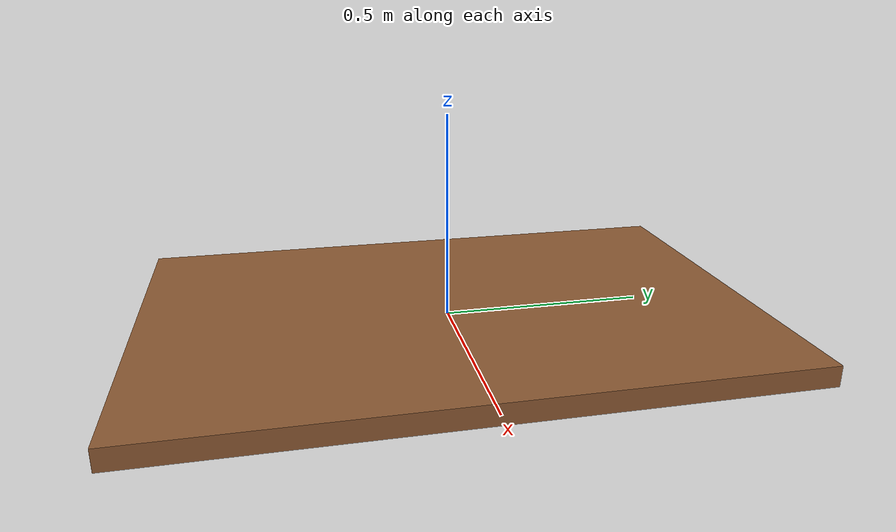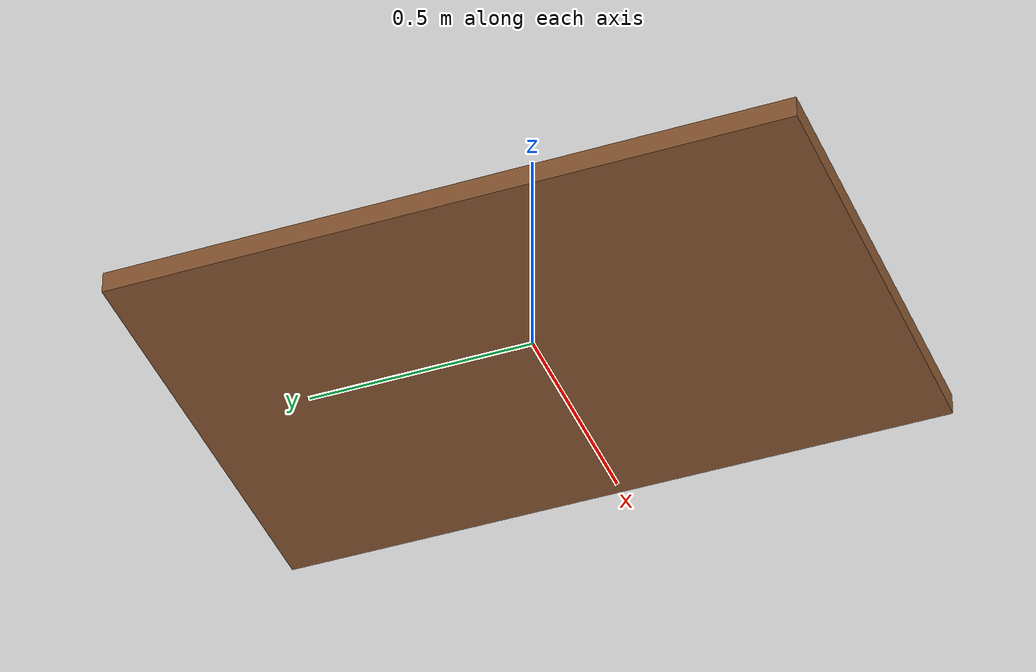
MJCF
<mujoco model="obstacle_table">
  <worldbody>
    <body name="obs" pos="0 0 0">
      <!-- Flat table-top: 1.0 x 1.5 x 0.05 m (size = half-extents) -->
      <geom name="table_geom" type="box" size="0.5 0.75 0.025"
            rgba="0.55 0.35 0.2 1" contype="1" conaffinity="1"/>
    </body>
  </worldbody>
</mujoco>
